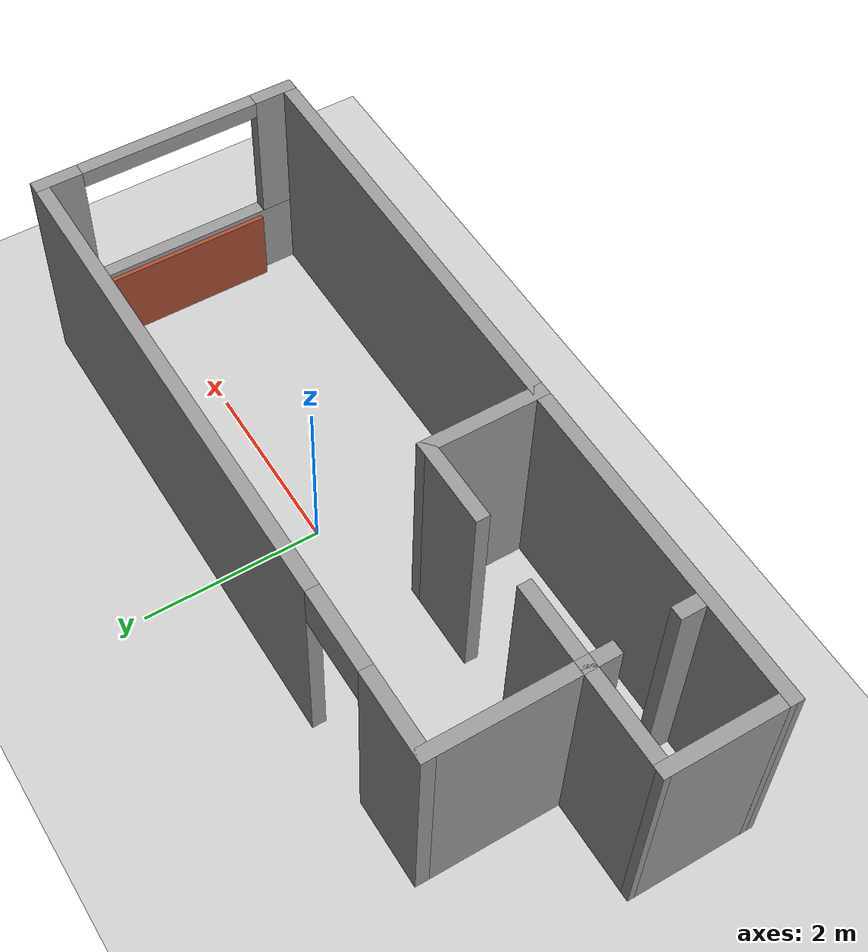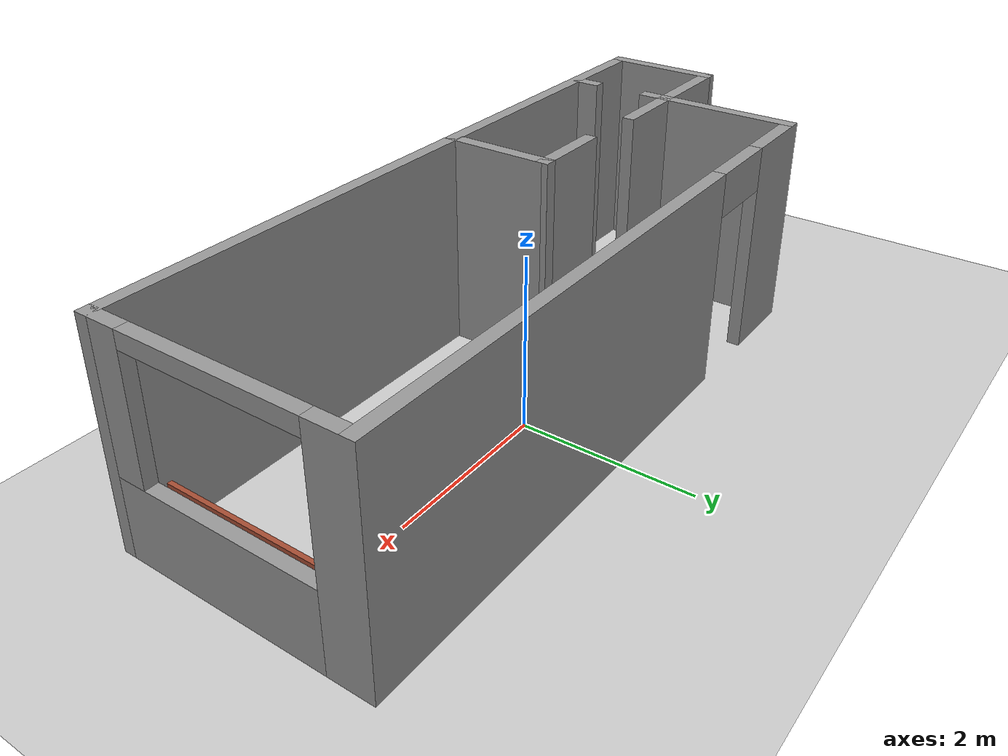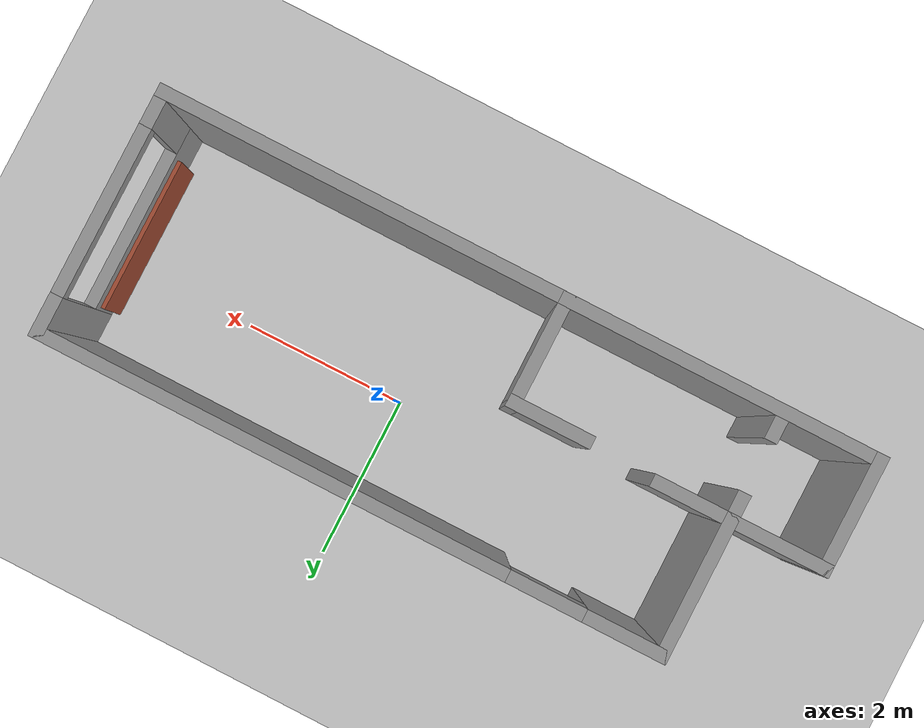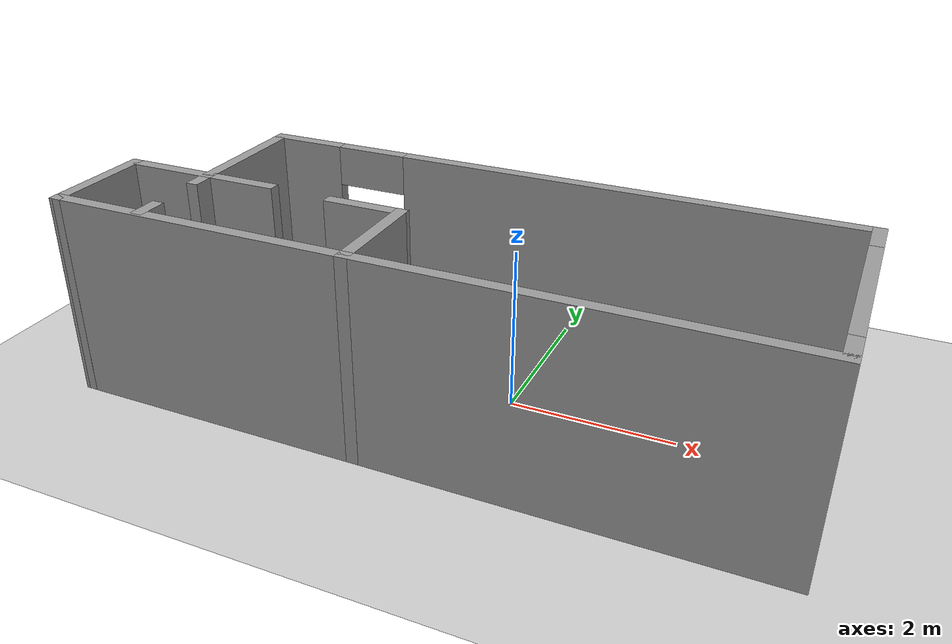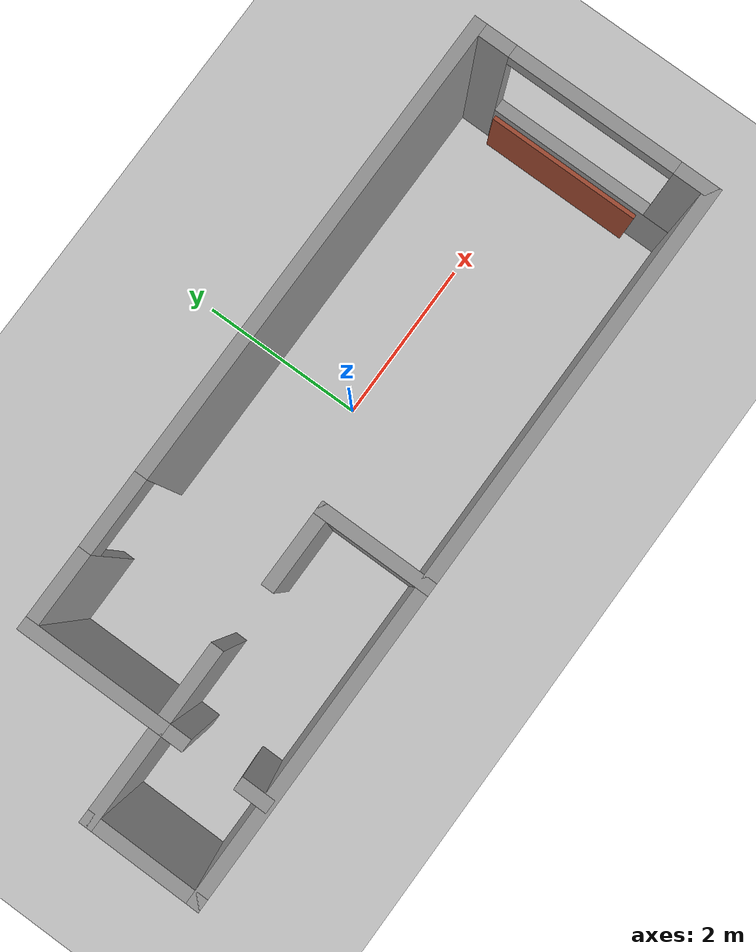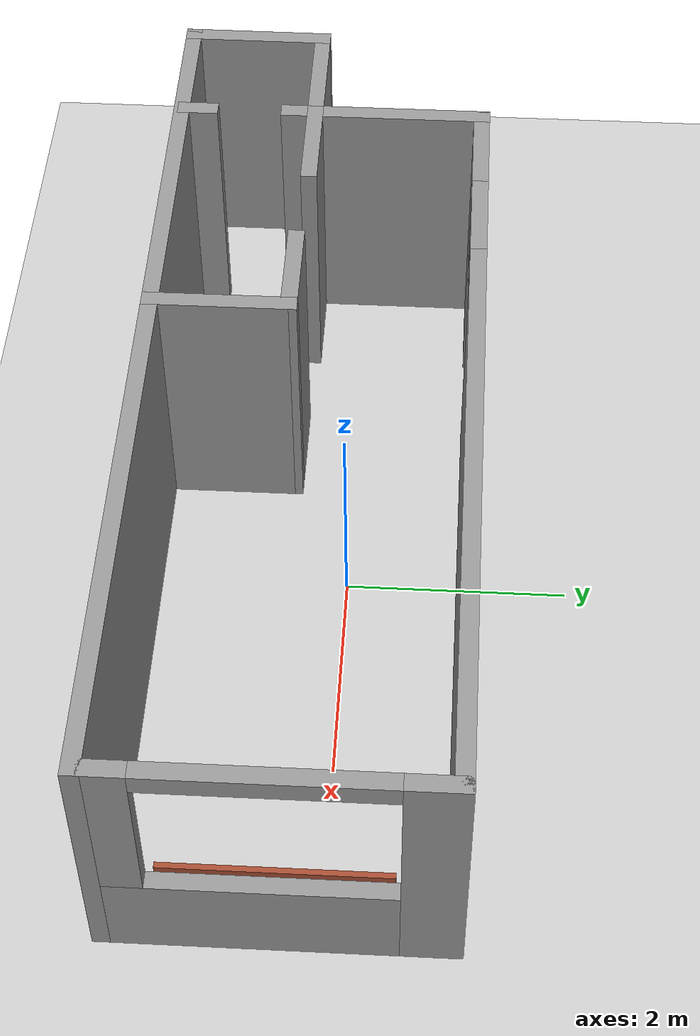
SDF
<sdf version="1.6">
 <world name="default">
  <light name="sun" type="directional">
   <pose>0 0 10 0 -0 0</pose>
   <diffuse>0.8 0.8 0.8 1</diffuse>
   <specular>0.2 0.2 0.2 1</specular>
   <attenuation>
    <range>1000</range>
    <constant>0.9</constant>
    <linear>0.01</linear>
    <quadratic>0.001</quadratic>
   </attenuation>
   <direction>-0.5 0.1 -0.9</direction>
  </light>
  <model name="ground_plane">
   <static>1</static>
   <link name="link">
    <collision name="collision">
     <geometry><plane><normal>0 0 1</normal><size>100 100</size></plane></geometry>
     <surface>
      <contact><collide_bitmask>65535</collide_bitmask></contact>
      <friction><ode><mu>100</mu><mu2>50</mu2></ode></friction>
     </surface>
    </collision>
    <visual name="visual">
     <cast_shadows>0</cast_shadows>
     <geometry><plane><normal>0 0 1</normal><size>100 100</size></plane></geometry>
     <material>
      <script><uri>file://media/materials/scripts/gazebo.material</uri><name>Gazebo/Grey</name></script>
     </material>
    </visual>
   </link>
  </model>
  <gravity>0 0 -9.8</gravity>
  <magnetic_field>6e-06 2.3e-05 -4.2e-05</magnetic_field>
  <atmosphere type="adiabatic"/>
  <physics name="default_physics" default="0" type="ode">
   <max_step_size>0.001</max_step_size>
   <real_time_factor>1</real_time_factor>
   <real_time_update_rate>1000</real_time_update_rate>
  </physics>
  <scene><ambient>0.4 0.4 0.4 1</ambient><background>0.7 0.7 0.7 1</background><shadows>1</shadows></scene>
  <spherical_coordinates>
   <surface_model>EARTH_WGS84</surface_model>
   <latitude_deg>0</latitude_deg>
   <longitude_deg>0</longitude_deg>
   <elevation>0</elevation>
   <heading_deg>0</heading_deg>
  </spherical_coordinates>
  <model name="home">
   <pose>-0.606892 -0.345705 0 0 -0 0</pose>
   <link name="Wall_0">
    <pose>0.552647 1.42521 0 0 -0 0</pose>
    <visual name="Wall_0_Visual_0">
     <pose>-3.2595 0 1.25 0 -0 0</pose>
     <geometry><box><size>0.981 0.15 2.5</size></box></geometry>
     <material>
      <script><uri>file://media/materials/scripts/gazebo.material</uri><name>Gazebo/Grey</name></script>
      <ambient>1 1 1 1</ambient>
     </material>
     <meta><layer>0</layer></meta>
    </visual>
    <collision name="Wall_0_Collision_0">
     <geometry><box><size>0.981 0.15 2.5</size></box></geometry>
     <pose>-3.2595 0 1.25 0 -0 0</pose>
    </collision>
    <visual name="Wall_0_Visual_1">
     <pose>0.9405 0 1.25 0 -0 0</pose>
     <geometry><box><size>5.619 0.15 2.5</size></box></geometry>
     <material>
      <script><uri>file://media/materials/scripts/gazebo.material</uri><name>Gazebo/Grey</name></script>
      <ambient>1 1 1 1</ambient>
     </material>
     <meta><layer>0</layer></meta>
    </visual>
    <collision name="Wall_0_Collision_1">
     <geometry><box><size>5.619 0.15 2.5</size></box></geometry>
     <pose>0.9405 0 1.25 0 -0 0</pose>
    </collision>
    <visual name="Wall_0_Visual_2">
     <pose>-2.319 0 2.25 0 -0 0</pose>
     <geometry><box><size>0.9 0.15 0.5</size></box></geometry>
     <material>
      <script><uri>file://media/materials/scripts/gazebo.material</uri><name>Gazebo/Grey</name></script>
      <ambient>1 1 1 1</ambient>
     </material>
     <meta><layer>0</layer></meta>
    </visual>
    <collision name="Wall_0_Collision_2">
     <geometry><box><size>0.9 0.15 0.5</size></box></geometry>
     <pose>-2.319 0 2.25 0 -0 0</pose>
    </collision>
   </link>
   <link name="Wall_12">
    <collision name="Wall_12_Collision">
     <geometry><box><size>1 0.15 2.5</size></box></geometry>
     <pose>0 0 1.25 0 -0 0</pose>
    </collision>
    <visual name="Wall_12_Visual">
     <pose>0 0 1.25 0 -0 0</pose>
     <geometry><box><size>1 0.15 2.5</size></box></geometry>
     <material>
      <script><uri>file://media/materials/scripts/gazebo.material</uri><name>Gazebo/Grey</name></script>
      <ambient>1 1 1 1</ambient>
     </material>
     <meta><layer>0</layer></meta>
    </visual>
    <pose>-0.973353 -0.210794 0 0 -0 0</pose>
   </link>
   <link name="Wall_14">
    <collision name="Wall_14_Collision">
     <geometry><box><size>4.925 0.15 2.5</size></box></geometry>
     <pose>0 0 1.25 0 -0 0</pose>
    </collision>
    <visual name="Wall_14_Visual">
     <pose>0 0 1.25 0 -0 0</pose>
     <geometry><box><size>4.925 0.15 2.5</size></box></geometry>
     <material>
      <script><uri>file://media/materials/scripts/gazebo.material</uri><name>Gazebo/Grey</name></script>
      <ambient>1 1 1 1</ambient>
     </material>
     <meta><layer>0</layer></meta>
    </visual>
    <pose>1.84015 -1.42479 0 0 -0 3.14159</pose>
   </link>
   <link name="Wall_16">
    <collision name="Wall_16_Collision">
     <geometry><box><size>1.36428 0.15 2.5</size></box></geometry>
     <pose>0 0 1.25 0 -0 0</pose>
    </collision>
    <visual name="Wall_16_Visual">
     <pose>0 0 1.25 0 -0 0</pose>
     <geometry><box><size>1.36428 0.15 2.5</size></box></geometry>
     <material>
      <script><uri>file://media/materials/scripts/gazebo.material</uri><name>Gazebo/Grey</name></script>
      <ambient>1 1 1 1</ambient>
     </material>
     <meta><layer>0</layer></meta>
    </visual>
    <pose>-0.547853 -0.817794 0 0 -0 1.57162</pose>
   </link>
   <link name="Wall_18">
    <collision name="Wall_18_Collision">
     <geometry><box><size>3.83 0.15 2.5</size></box></geometry>
     <pose>0 0 1.25 0 -0 0</pose>
    </collision>
    <visual name="Wall_18_Visual">
     <pose>0 0 1.25 0 -0 0</pose>
     <geometry><box><size>3.83 0.15 2.5</size></box></geometry>
     <material>
      <script><uri>file://media/materials/scripts/gazebo.material</uri><name>Gazebo/Grey</name></script>
      <ambient>1 1 1 1</ambient>
     </material>
     <meta><layer>0</layer></meta>
    </visual>
    <pose>-2.38735 -1.42479 0 0 -0 3.14159</pose>
   </link>
   <link name="Wall_2">
    <pose>4.22765 0.000206 0 0 0 -1.5708</pose>
    <visual name="Wall_2_Visual_0">
     <pose>-1.24225 0 1.25 0 -0 0</pose>
     <geometry><box><size>0.5155 0.15 2.5</size></box></geometry>
     <material>
      <script><uri>file://media/materials/scripts/gazebo.material</uri><name>Gazebo/Grey</name></script>
      <ambient>1 1 1 1</ambient>
     </material>
     <meta><layer>0</layer></meta>
    </visual>
    <collision name="Wall_2_Collision_0">
     <geometry><box><size>0.5155 0.15 2.5</size></box></geometry>
     <pose>-1.24225 0 1.25 0 -0 0</pose>
    </collision>
    <visual name="Wall_2_Visual_1">
     <pose>0.25775 0 0.455 0 -0 0</pose>
     <geometry><box><size>2.4845 0.15 0.91</size></box></geometry>
     <material>
      <script><uri>file://media/materials/scripts/gazebo.material</uri><name>Gazebo/Grey</name></script>
      <ambient>1 1 1 1</ambient>
     </material>
     <meta><layer>0</layer></meta>
    </visual>
    <collision name="Wall_2_Collision_1">
     <geometry><box><size>2.4845 0.15 0.91</size></box></geometry>
     <pose>0.25775 0 0.455 0 -0 0</pose>
    </collision>
    <visual name="Wall_2_Visual_2">
     <pose>1.25775 0 1.705 0 -0 0</pose>
     <geometry><box><size>0.4845 0.15 1.59</size></box></geometry>
     <material>
      <script><uri>file://media/materials/scripts/gazebo.material</uri><name>Gazebo/Grey</name></script>
      <ambient>1 1 1 1</ambient>
     </material>
     <meta><layer>0</layer></meta>
    </visual>
    <collision name="Wall_2_Collision_2">
     <geometry><box><size>0.4845 0.15 1.59</size></box></geometry>
     <pose>1.25775 0 1.705 0 -0 0</pose>
    </collision>
    <visual name="Wall_2_Visual_3">
     <pose>0.0155 0 2.405 0 -0 0</pose>
     <geometry><box><size>2 0.15 0.19</size></box></geometry>
     <material>
      <script><uri>file://media/materials/scripts/gazebo.material</uri><name>Gazebo/Grey</name></script>
      <ambient>1 1 1 1</ambient>
     </material>
     <meta><layer>0</layer></meta>
    </visual>
    <collision name="Wall_2_Collision_3">
     <geometry><box><size>2 0.15 0.19</size></box></geometry>
     <pose>0.0155 0 2.405 0 -0 0</pose>
    </collision>
   </link>
   <link name="Wall_20">
    <collision name="Wall_20_Collision">
     <geometry><box><size>1.42025 0.15 2.5</size></box></geometry>
     <pose>0 0 1.25 0 -0 0</pose>
    </collision>
    <visual name="Wall_20_Visual">
     <pose>0 0 1.25 0 -0 0</pose>
     <geometry><box><size>1.42025 0.15 2.5</size></box></geometry>
     <material>
      <script><uri>file://media/materials/scripts/gazebo.material</uri><name>Gazebo/Grey</name></script>
      <ambient>1 1 1 1</ambient>
     </material>
     <meta><layer>0</layer></meta>
    </visual>
    <pose>-4.22485 -0.789794 0 0 -0 1.56686</pose>
   </link>
   <link name="Wall_22">
    <collision name="Wall_22_Collision">
     <geometry><box><size>0.4 0.15 2.5</size></box></geometry>
     <pose>0 0 1.25 0 -0 0</pose>
    </collision>
    <visual name="Wall_22_Visual">
     <pose>0 0 1.25 0 -0 0</pose>
     <geometry><box><size>0.4 0.15 2.5</size></box></geometry>
     <material>
      <script><uri>file://media/materials/scripts/gazebo.material</uri><name>Gazebo/Grey</name></script>
      <ambient>1 1 1 1</ambient>
     </material>
     <meta><layer>0</layer></meta>
    </visual>
    <pose>-3.12235 -0.279794 0 0 0 -1.5708</pose>
   </link>
   <link name="Wall_25">
    <collision name="Wall_25_Collision">
     <geometry><box><size>0.384001 0.15 2.5</size></box></geometry>
     <pose>0 0 1.25 0 -0 0</pose>
    </collision>
    <visual name="Wall_25_Visual">
     <pose>0 0 1.25 0 -0 0</pose>
     <geometry><box><size>0.384001 0.15 2.5</size></box></geometry>
     <material>
      <script><uri>file://media/materials/scripts/gazebo.material</uri><name>Gazebo/Grey</name></script>
      <ambient>1 1 1 1</ambient>
     </material>
     <meta><layer>0</layer></meta>
    </visual>
    <pose>-3.11235 -1.27179 0 0 0 -1.5708</pose>
   </link>
   <link name="Wall_29">
    <collision name="Wall_29_Collision">
     <geometry><box><size>1.9 0.05 0.9</size></box></geometry>
     <pose>0 0 0.45 0 -0 0</pose>
    </collision>
    <visual name="Wall_29_Visual">
     <pose>0 0 0.45 0 -0 0</pose>
     <geometry><box><size>1.9 0.05 0.9</size></box></geometry>
     <material>
      <script><uri>file://media/materials/scripts/gazebo.material</uri><name>Gazebo/Bricks</name></script>
      <ambient>1 1 1 1</ambient>
     </material>
     <meta><layer>0</layer></meta>
    </visual>
    <pose>4.08665 -0.008794 0 0 0 -1.5708</pose>
   </link>
   <link name="Wall_4">
    <collision name="Wall_4_Collision">
     <geometry><box><size>1.73 0.15 2.5</size></box></geometry>
     <pose>0 0 1.25 0 -0 0</pose>
    </collision>
    <visual name="Wall_4_Visual">
     <pose>0 0 1.25 0 -0 0</pose>
     <geometry><box><size>1.73 0.15 2.5</size></box></geometry>
     <material>
      <script><uri>file://media/materials/scripts/gazebo.material</uri><name>Gazebo/Grey</name></script>
      <ambient>1 1 1 1</ambient>
     </material>
     <meta><layer>0</layer></meta>
    </visual>
    <pose>-3.12235 0.635206 0 0 0 -1.5708</pose>
   </link>
   <link name="Wall_6">
    <collision name="Wall_6_Collision">
     <geometry><box><size>1 0.15 2.5</size></box></geometry>
     <pose>0 0 1.25 0 -0 0</pose>
    </collision>
    <visual name="Wall_6_Visual">
     <pose>0 0 1.25 0 -0 0</pose>
     <geometry><box><size>1 0.15 2.5</size></box></geometry>
     <material>
      <script><uri>file://media/materials/scripts/gazebo.material</uri><name>Gazebo/Grey</name></script>
      <ambient>1 1 1 1</ambient>
     </material>
     <meta><layer>0</layer></meta>
    </visual>
    <pose>-2.69735 -0.154794 0 0 -0 0</pose>
   </link>
   <link name="Wall_8">
    <collision name="Wall_8_Collision">
     <geometry><box><size>1.25 0.15 2.5</size></box></geometry>
     <pose>0 0 1.25 0 -0 0</pose>
    </collision>
    <visual name="Wall_8_Visual">
     <pose>0 0 1.25 0 -0 0</pose>
     <geometry><box><size>1.25 0.15 2.5</size></box></geometry>
     <material>
      <script><uri>file://media/materials/scripts/gazebo.material</uri><name>Gazebo/Grey</name></script>
      <ambient>1 1 1 1</ambient>
     </material>
     <meta><layer>0</layer></meta>
    </visual>
    <pose>-3.67235 -0.154794 0 0 -0 3.14159</pose>
   </link>
   <static>1</static>
  </model>
 </world>
</sdf>
